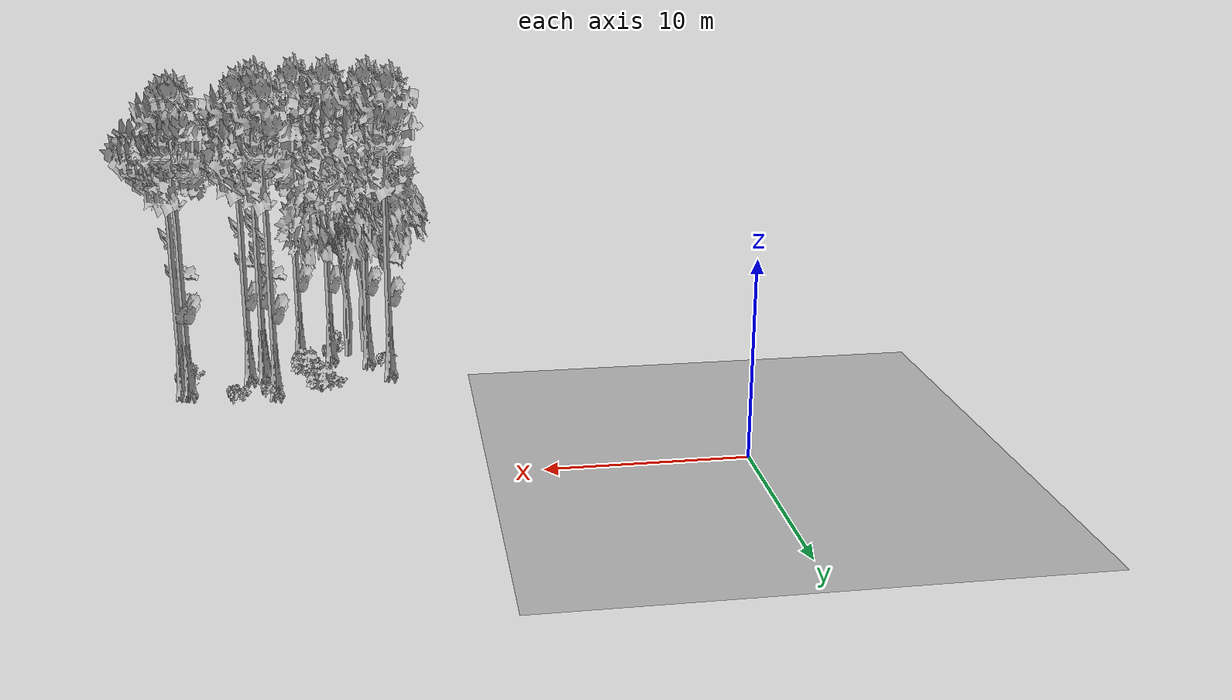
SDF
<sdf version="1.7">
 <world name="default">
  <model name="ground_plane">
   <static>1</static>
   <link name="link">
    <collision name="collision">
     <pose>-50 0 0 0 -0 0</pose>
     <geometry><plane><normal>0 0 1</normal><size>80 80</size></plane></geometry>
     <surface><contact><ode><min_depth>0.01</min_depth><max_vel>0</max_vel></ode></contact></surface>
    </collision>
    <visual name="grass">
     <cast_shadows>0</cast_shadows>
     <geometry>
      <mesh>
       <scale>0.46714285714285714 0.46714285714285714 0.1</scale>
       <uri>file://grass_plane/meshes/grass_plane.dae</uri>
      </mesh>
     </geometry>
    </visual>
   </link>
  </model>
  <model name="Tree 25">
   <static>1</static>
   <pose>27.72420464449263 -12.524156283645667 0 1.57079 -0 0</pose>
   <link name="link">
    <collision name="collision">
     <geometry><mesh><scale>3.5 5 3.5</scale><uri>model://tree_9/meshes/tree_9.obj</uri></mesh></geometry>
    </collision>
    <visual name="visual">
     <geometry><mesh><scale>3.5 5 3.5</scale><uri>model://tree_9/meshes/tree_9.obj</uri></mesh></geometry>
    </visual>
   </link>
  </model>
  <model name="Tree 35">
   <static>1</static>
   <pose>20.18215477768119 -16.720594975201433 0 1.57079 -0 0</pose>
   <link name="link">
    <collision name="collision">
     <geometry><mesh><scale>3.5 5 3.5</scale><uri>model://tree_9/meshes/tree_9.obj</uri></mesh></geometry>
    </collision>
    <visual name="visual">
     <geometry><mesh><scale>3.5 5 3.5</scale><uri>model://tree_9/meshes/tree_9.obj</uri></mesh></geometry>
    </visual>
   </link>
  </model>
  <model name="Tree 41">
   <static>1</static>
   <pose>28.12235616732835 -12.628751345176799 0 1.57079 -0 0</pose>
   <link name="link">
    <collision name="collision">
     <geometry><mesh><scale>3.5 5 3.5</scale><uri>model://tree_9/meshes/tree_9.obj</uri></mesh></geometry>
    </collision>
    <visual name="visual">
     <geometry><mesh><scale>3.5 5 3.5</scale><uri>model://tree_9/meshes/tree_9.obj</uri></mesh></geometry>
    </visual>
   </link>
  </model>
  <model name="Tree 166">
   <static>1</static>
   <pose>16.857874170892813 -13.912820366542931 0 1.57079 -0 0</pose>
   <link name="link">
    <collision name="collision">
     <geometry><mesh><scale>3.5 5 3.5</scale><uri>model://tree_9/meshes/tree_9.obj</uri></mesh></geometry>
    </collision>
    <visual name="visual">
     <geometry><mesh><scale>3.5 5 3.5</scale><uri>model://tree_9/meshes/tree_9.obj</uri></mesh></geometry>
    </visual>
   </link>
  </model>
  <model name="Tree 199">
   <static>1</static>
   <pose>18.060867310844657 -15.97095084050105 0 1.57079 -0 0</pose>
   <link name="link">
    <collision name="collision">
     <geometry><mesh><scale>3.5 5 3.5</scale><uri>model://tree_9/meshes/tree_9.obj</uri></mesh></geometry>
    </collision>
    <visual name="visual">
     <geometry><mesh><scale>3.5 5 3.5</scale><uri>model://tree_9/meshes/tree_9.obj</uri></mesh></geometry>
    </visual>
   </link>
  </model>
  <model name="Tree 219">
   <static>1</static>
   <pose>24.014637390249398 -16.612663665607357 0 1.57079 -0 0</pose>
   <link name="link">
    <collision name="collision">
     <geometry><mesh><scale>3.5 5 3.5</scale><uri>model://tree_9/meshes/tree_9.obj</uri></mesh></geometry>
    </collision>
    <visual name="visual">
     <geometry><mesh><scale>3.5 5 3.5</scale><uri>model://tree_9/meshes/tree_9.obj</uri></mesh></geometry>
    </visual>
   </link>
  </model>
  <model name="Tree 337">
   <static>1</static>
   <pose>21.941043753157786 -17.177878255465295 0 1.57079 -0 0</pose>
   <link name="link">
    <collision name="collision">
     <geometry><mesh><scale>3.5 5 3.5</scale><uri>model://tree_9/meshes/tree_9.obj</uri></mesh></geometry>
    </collision>
    <visual name="visual">
     <geometry><mesh><scale>3.5 5 3.5</scale><uri>model://tree_9/meshes/tree_9.obj</uri></mesh></geometry>
    </visual>
   </link>
  </model>
  <model name="Tree 352">
   <static>1</static>
   <pose>23.06651096032204 -11.8873489978089 0 1.57079 -0 0</pose>
   <link name="link">
    <collision name="collision">
     <geometry><mesh><scale>3.5 5 3.5</scale><uri>model://tree_9/meshes/tree_9.obj</uri></mesh></geometry>
    </collision>
    <visual name="visual">
     <geometry><mesh><scale>3.5 5 3.5</scale><uri>model://tree_9/meshes/tree_9.obj</uri></mesh></geometry>
    </visual>
   </link>
  </model>
  <model name="Tree 486">
   <static>1</static>
   <pose>24.623481922733433 -14.312704396694372 0 1.57079 -0 0</pose>
   <link name="link">
    <collision name="collision">
     <geometry><mesh><scale>3.5 5 3.5</scale><uri>model://tree_9/meshes/tree_9.obj</uri></mesh></geometry>
    </collision>
    <visual name="visual">
     <geometry><mesh><scale>3.5 5 3.5</scale><uri>model://tree_9/meshes/tree_9.obj</uri></mesh></geometry>
    </visual>
   </link>
  </model>
  <model name="Tree 516">
   <static>1</static>
   <pose>18.20515450058862 -17.17625940203793 0 1.57079 -0 0</pose>
   <link name="link">
    <collision name="collision">
     <geometry><mesh><scale>3.5 5 3.5</scale><uri>model://tree_2/meshes/tree_2.obj</uri></mesh></geometry>
    </collision>
    <visual name="visual">
     <geometry><mesh><scale>3.5 5 3.5</scale><uri>model://tree_2/meshes/tree_2.obj</uri></mesh></geometry>
    </visual>
   </link>
  </model>
  <model name="Tree 525">
   <static>1</static>
   <pose>23.842758409797305 -14.435646082736788 0 1.57079 -0 0</pose>
   <link name="link">
    <collision name="collision">
     <geometry><mesh><scale>3.5 5 3.5</scale><uri>model://tree_9/meshes/tree_9.obj</uri></mesh></geometry>
    </collision>
    <visual name="visual">
     <geometry><mesh><scale>3.5 5 3.5</scale><uri>model://tree_9/meshes/tree_9.obj</uri></mesh></geometry>
    </visual>
   </link>
  </model>
  <model name="Tree 527">
   <static>1</static>
   <pose>19.1220772524375 -16.574470862377577 0 1.57079 -0 0</pose>
   <link name="link">
    <collision name="collision">
     <geometry><mesh><scale>3.5 5 3.5</scale><uri>model://tree_2/meshes/tree_2.obj</uri></mesh></geometry>
    </collision>
    <visual name="visual">
     <geometry><mesh><scale>3.5 5 3.5</scale><uri>model://tree_2/meshes/tree_2.obj</uri></mesh></geometry>
    </visual>
   </link>
  </model>
  <model name="Bush 12">
   <static>1</static>
   <pose>17.098473961726278 -15.560673035588309 0 1.57079 -0 0</pose>
   <link name="link">
    <collision name="collision">
     <geometry><mesh><scale>2 2 2</scale><uri>model://bush_2/meshes/bush_2.obj</uri></mesh></geometry>
     <surface><contact><collide_without_contact>false</collide_without_contact></contact></surface>
    </collision>
    <visual name="visual">
     <geometry><mesh><scale>2 2 2</scale><uri>model://bush_2/meshes/bush_2.obj</uri></mesh></geometry>
    </visual>
   </link>
  </model>
  <model name="Bush 50">
   <static>1</static>
   <pose>20.60297643808868 -11.155973236833667 0 1.57079 -0 0</pose>
   <link name="link">
    <collision name="collision">
     <geometry><mesh><scale>2 2 2</scale><uri>model://bush_1/meshes/bush_1.obj</uri></mesh></geometry>
     <surface><contact><collide_without_contact>false</collide_without_contact></contact></surface>
    </collision>
    <visual name="visual">
     <geometry><mesh><scale>2 2 2</scale><uri>model://bush_1/meshes/bush_1.obj</uri></mesh></geometry>
    </visual>
   </link>
  </model>
  <model name="Bush 60">
   <static>1</static>
   <pose>21.49222933027628 -13.476693727443578 0 1.57079 -0 0</pose>
   <link name="link">
    <collision name="collision">
     <geometry><mesh><scale>2 2 2</scale><uri>model://bush_1/meshes/bush_1.obj</uri></mesh></geometry>
     <surface><contact><collide_without_contact>false</collide_without_contact></contact></surface>
    </collision>
    <visual name="visual">
     <geometry><mesh><scale>2 2 2</scale><uri>model://bush_1/meshes/bush_1.obj</uri></mesh></geometry>
    </visual>
   </link>
  </model>
  <model name="Bush 151">
   <static>1</static>
   <pose>25.003865937039023 -11.206963204891494 0 1.57079 -0 0</pose>
   <link name="link">
    <collision name="collision">
     <geometry><mesh><scale>2 2 2</scale><uri>model://bush_2/meshes/bush_2.obj</uri></mesh></geometry>
     <surface><contact><collide_without_contact>false</collide_without_contact></contact></surface>
    </collision>
    <visual name="visual">
     <geometry><mesh><scale>2 2 2</scale><uri>model://bush_2/meshes/bush_2.obj</uri></mesh></geometry>
    </visual>
   </link>
  </model>
  <model name="Bush 239">
   <static>1</static>
   <pose>28.19845770456803 -14.312945985632986 0 1.57079 -0 0</pose>
   <link name="link">
    <collision name="collision">
     <geometry><mesh><scale>2 2 2</scale><uri>model://bush_2/meshes/bush_2.obj</uri></mesh></geometry>
     <surface><contact><collide_without_contact>false</collide_without_contact></contact></surface>
    </collision>
    <visual name="visual">
     <geometry><mesh><scale>2 2 2</scale><uri>model://bush_2/meshes/bush_2.obj</uri></mesh></geometry>
    </visual>
   </link>
  </model>
  <model name="Bush 252">
   <static>1</static>
   <pose>25.155837496895664 -11.738967830143288 0 1.57079 -0 0</pose>
   <link name="link">
    <collision name="collision">
     <geometry><mesh><scale>2 2 2</scale><uri>model://bush_2/meshes/bush_2.obj</uri></mesh></geometry>
     <surface><contact><collide_without_contact>false</collide_without_contact></contact></surface>
    </collision>
    <visual name="visual">
     <geometry><mesh><scale>2 2 2</scale><uri>model://bush_2/meshes/bush_2.obj</uri></mesh></geometry>
    </visual>
   </link>
  </model>
  <model name="Bush 410">
   <static>1</static>
   <pose>23.35609211630345 -11.866059787659722 0 1.57079 -0 0</pose>
   <link name="link">
    <collision name="collision">
     <geometry><mesh><scale>2 2 2</scale><uri>model://bush_2/meshes/bush_2.obj</uri></mesh></geometry>
     <surface><contact><collide_without_contact>false</collide_without_contact></contact></surface>
    </collision>
    <visual name="visual">
     <geometry><mesh><scale>2 2 2</scale><uri>model://bush_2/meshes/bush_2.obj</uri></mesh></geometry>
    </visual>
   </link>
  </model>
  <model name="Bush 429">
   <static>1</static>
   <pose>19.905160870120234 -17.12238501339124 0 1.57079 -0 0</pose>
   <link name="link">
    <collision name="collision">
     <geometry><mesh><scale>2 2 2</scale><uri>model://bush_4/meshes/bush_4.obj</uri></mesh></geometry>
     <surface><contact><collide_without_contact>false</collide_without_contact></contact></surface>
    </collision>
    <visual name="visual">
     <geometry><mesh><scale>2 2 2</scale><uri>model://bush_4/meshes/bush_4.obj</uri></mesh></geometry>
    </visual>
   </link>
  </model>
  <model name="Bush 501">
   <static>1</static>
   <pose>27.661574975564548 -12.976471846549053 0 1.57079 -0 0</pose>
   <link name="link">
    <collision name="collision">
     <geometry><mesh><scale>2 2 2</scale><uri>model://bush_4/meshes/bush_4.obj</uri></mesh></geometry>
     <surface><contact><collide_without_contact>false</collide_without_contact></contact></surface>
    </collision>
    <visual name="visual">
     <geometry><mesh><scale>2 2 2</scale><uri>model://bush_4/meshes/bush_4.obj</uri></mesh></geometry>
    </visual>
   </link>
  </model>
  <model name="Bush 565">
   <static>1</static>
   <pose>20.20428960658809 -17.197431585215988 0 1.57079 -0 0</pose>
   <link name="link">
    <collision name="collision">
     <geometry><mesh><scale>2 2 2</scale><uri>model://bush_2/meshes/bush_2.obj</uri></mesh></geometry>
     <surface><contact><collide_without_contact>false</collide_without_contact></contact></surface>
    </collision>
    <visual name="visual">
     <geometry><mesh><scale>2 2 2</scale><uri>model://bush_2/meshes/bush_2.obj</uri></mesh></geometry>
    </visual>
   </link>
  </model>
  <model name="Bush 613">
   <static>1</static>
   <pose>19.898546506434762 -12.38182408768808 0 1.57079 -0 0</pose>
   <link name="link">
    <collision name="collision">
     <geometry><mesh><scale>2 2 2</scale><uri>model://bush_2/meshes/bush_2.obj</uri></mesh></geometry>
     <surface><contact><collide_without_contact>false</collide_without_contact></contact></surface>
    </collision>
    <visual name="visual">
     <geometry><mesh><scale>2 2 2</scale><uri>model://bush_2/meshes/bush_2.obj</uri></mesh></geometry>
    </visual>
   </link>
  </model>
 </world>
</sdf>
